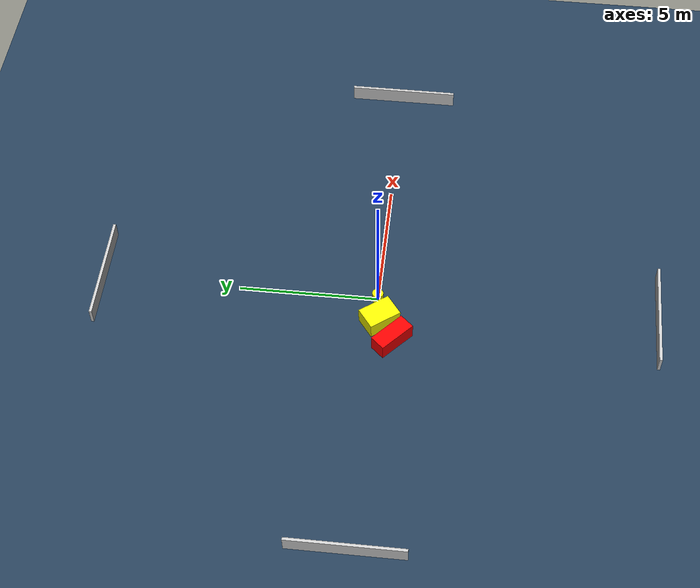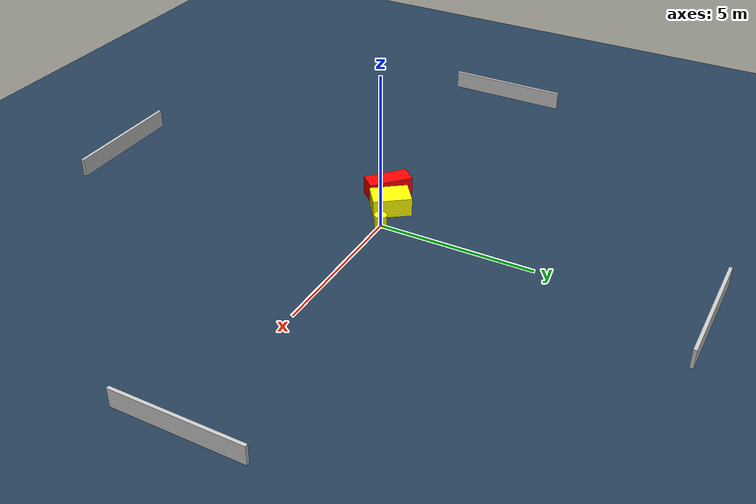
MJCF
<?xml version="1.0" ?>
<mujoco model="generated_environment">
  <option timestep="0.01" integrator="RK4" cone="elliptic"/>
  <default>
    <geom density="1"/>
  </default>
  <asset>
    <texture builtin="gradient" height="3072" name="skybox" rgb1="0.3 0.5 0.7" rgb2="0 0 0" type="skybox" width="512"/>
    <texture builtin="checker" height="300" name="groundplane" rgb1="0.2 0.3 0.4" rgb2="0.1 0.2 0.3" type="2d" width="300"/>
    <material name="groundplane" reflectance="0.2" texrepeat="5 5" texture="groundplane"/>
  </asset>
  <worldbody>
    <light dir="0 0 -1" directional="true" pos="0 0 1.5"/>
    <geom condim="3" friction="0.5 0.005 0.001" material="groundplane" name="floor" pos="0 0 0" size="0 0 0.05" type="plane"/>
    <body name="walls">
      <geom name="wall_1" condim="4" pos="-10.0 0.0 0.3" rgba="0.800000011920929 0.800000011920929 0.800000011920929 1.0" size="0.05 2.0 0.3" type="box"/>
      <geom name="wall_2" condim="4" pos="10.0 0.0 0.3" rgba="0.800000011920929 0.800000011920929 0.800000011920929 1.0" size="0.05 2.0 0.3" type="box"/>
      <geom name="wall_3" condim="4" pos="0.0 -10.0 0.3" rgba="0.800000011920929 0.800000011920929 0.800000011920929 1.0" size="2.0 0.05 0.3" type="box"/>
      <geom name="wall_4" condim="4" pos="0.0 10.0 0.3" rgba="0.800000011920929 0.800000011920929 0.800000011920929 1.0" size="2.0 0.05 0.3" type="box"/>
    </body>
    <body name="robot">
      <joint name="joint_x" type="slide" pos="0 0 0" axis="1 0 0"/>
      <joint name="joint_y" type="slide" pos="0 0 0" axis="0 1 0"/>
      <geom name="robot" type="cylinder" pos="0.0 0.0 0.2" size="0.2 0.2 0.0" mass="5.0" friction="1.0 0.005 0.0001" condim="4" rgba="1.0 1.0 0.0 1.0"/>
    </body>
    <body name="obstacle_1_movable">
      <geom name="obstacle_1_movable" condim="4" pos="-0.9390887263661002 -0.15463305870556163 0.3" euler="0 0 216.893545923225" friction="0.0 0.005 0.001" rgba="1.0 1.0 0.0 1.0" size="0.427120909214708 0.6048358684261175 0.3" type="box" mass="0.1"/>
      <joint type="free"/>
    </body>
    <body name="obstacle_2_static">
      <geom name="obstacle_2_static" condim="4" pos="-1.7674409818155163 -0.6811733881318328 0.3" euler="0 0 227.7290185485182" friction="0.0 0.005 0.001" rgba="1.0 0.0 0.0 1.0" size="0.30077313752138946 0.7088977851149056 0.3" type="box"/>
    </body>
  </worldbody>
  <actuator>
    <motor name="actuator_x" joint="joint_x" gear="1" ctrlrange="-1 1"/>
    <motor name="actuator_y" joint="joint_y" gear="1" ctrlrange="-1 1"/>
  </actuator>
</mujoco>
